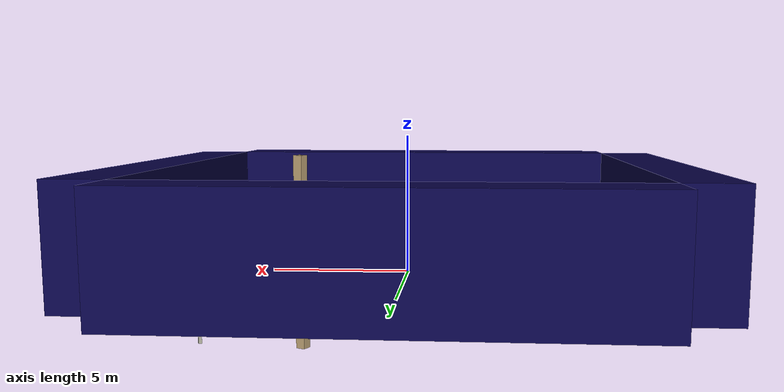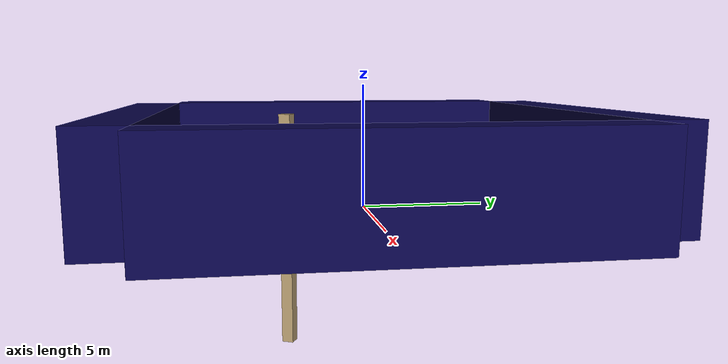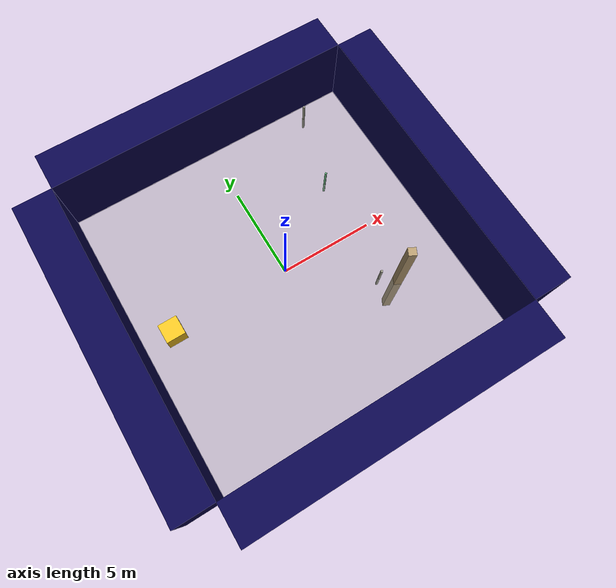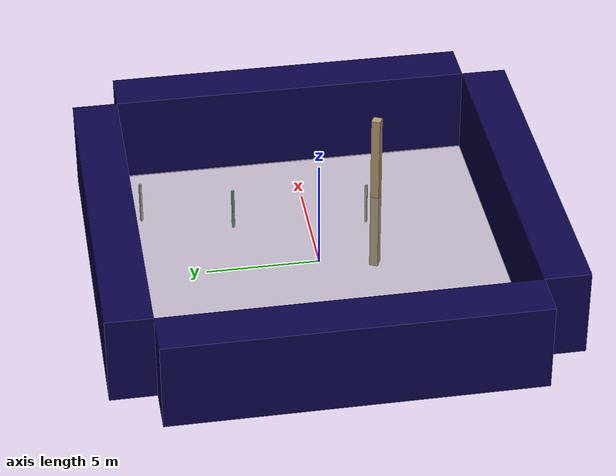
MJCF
<mujoco model="unnamed_model">
  <default>
    <default class="/" />
    <default class="border/" />
    <default class="border_1/" />
    <default class="border_2/" />
    <default class="border_3/" />
    <default class="light/" />
    <default class="agent/" />
    <default class="stone0/" />
    <default class="stone1/" />
    <default class="apple/" />
    <default class="apple_1/" />
  </default>
  <worldbody>
    <body name="border/">
      <body name="border/border" pos="0 9 2">
        <geom name="border/border_geom" class="border/" type="box" size="8.0 1.0 2.0" rgba="0.035 0.016 0.29 1.0" />
      </body>
    </body>
    <body name="border_1/">
      <body name="border_1/border" pos="0 -9 2">
        <geom name="border_1/border_geom" class="border_1/" type="box" size="8.0 1.0 2.0" rgba="0.035 0.016 0.29 1.0" />
      </body>
    </body>
    <body name="border_2/">
      <body name="border_2/border" pos="9 0 2">
        <geom name="border_2/border_geom" class="border_2/" type="box" size="1.0 8.0 2.0" rgba="0.035 0.016 0.29 1.0" />
      </body>
    </body>
    <body name="border_3/">
      <body name="border_3/border" pos="-9 0 2">
        <geom name="border_3/border_geom" class="border_3/" type="box" size="1.0 8.0 2.0" rgba="0.035 0.016 0.29 1.0" />
      </body>
    </body>
    <body name="light/">
      <body name="light/light" pos="0 0 15">
        <geom name="light/light_geom" class="light/" size="0.5" rgba="1.0 1.0 1.0 0.0" />
        <light name="light//unnamed_light_0" class="light/" />
      </body>
    </body>
    <body euler="0 0 270.20472852389452" name="agent/" pos="-6.4000000000000004 0 0.5">
      <joint name="agent/boxagent_freeJoint/" class="/" type="free" />
      <body name="agent/agent" pos="0 0 0" euler="0 0 0">
        <geom name="agent/boxagent_geom" class="agent/" type="box" size="0.5 0.5 0.5" rgba="0.949 0.7451 0.1333 1.0" euler="0 0 0" />
        <camera name="agent/boxagent_camera" class="agent/" fovy="90" pos="0 0 0.25" euler="-90 180 0" />
      </body>
    </body>
    <body name="stone0/">
      <body name="stone0/stone0" pos="3.9012000000000002 -2.7904 0.10000000000000001" euler="0 0 155.209294224085">
        <geom name="stone0/stone_geom" class="stone0/" type="box" size="0.05 0.05 1.0" rgba="0.6470588235294118 0.6392156862745098 0.5686274509803921 1.0" />
      </body>
    </body>
    <body name="stone1/">
      <body name="stone1/stone1" pos="4.4422499999999996 3.2423999999999999 0.10000000000000001" euler="0 0 128.81483719893907">
        <geom name="stone1/stone_geom" class="stone1/" type="box" size="0.05 0.05 1.0" rgba="0.396078431372549 0.6705882352941176 0.48627450980392156 1.0" />
      </body>
    </body>
    <body name="apple/">
      <body name="apple/apple" pos="5.6145499999999995 7.3223000000000003 0.10000000000000001" euler="0 0 114.77857147285727">
        <geom name="apple/apple_geom" class="apple/" type="box" size="0.05 0.05 1.0" rgba="0.6470588235294118 0.6392156862745098 0.5686274509803921 1.0" />
      </body>
    </body>
    <body name="apple_1/">
      <body name="apple_1/apple" pos="4.6326999999999998 -3.3787000000000003 0.10000000000000001" euler="0 0 153.17374912371798">
        <geom name="apple_1/apple_geom" class="apple_1/" type="box" size="0.2 0.2 4.0" rgba="0.6980392156862745 0.6 0.43137254901960786 1.0" />
      </body>
    </body>
    <geom name="base_plane" class="/" type="plane" size="8 8 0.10000000000000001" />
  </worldbody>
</mujoco>
